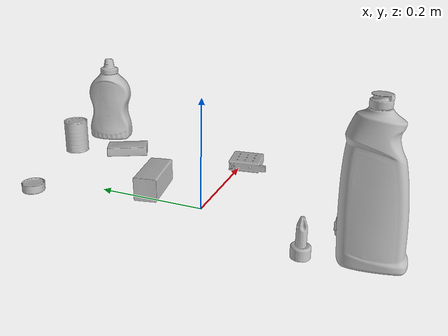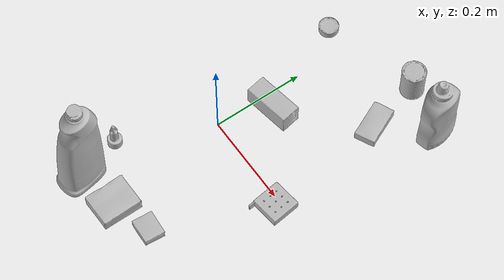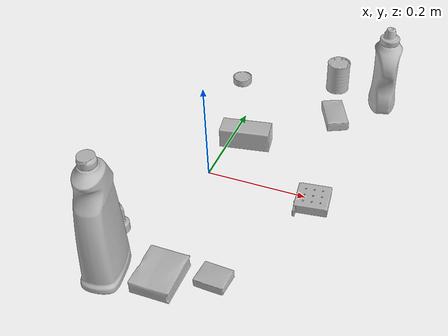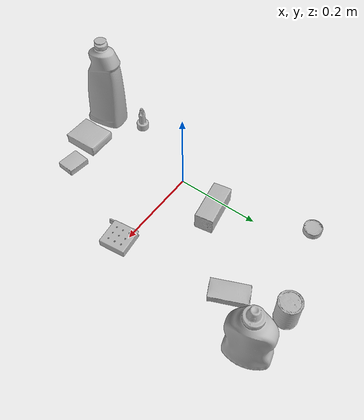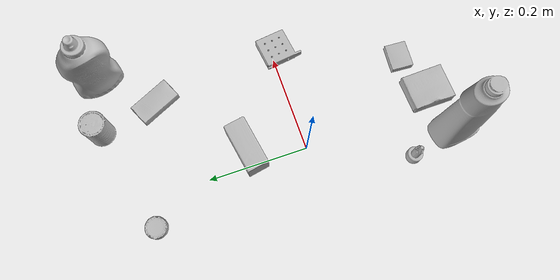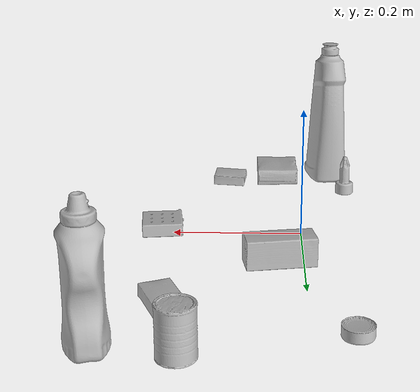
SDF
<sdf version="1.4">
  <world name="default">
    <light name="light1" type="point">
      <pose>0 0 1 0 0 0</pose>
      <diffuse>3 3 3 1</diffuse>
      <specular>3 3 3 1</specular>
    </light>
    <light name="light2" type="point">
      <pose>0 0.5 2 0 0 0</pose>
      <diffuse>1 1 1 1</diffuse>
      <specular>1 1 1 1</specular>
    </light>
    <light name="light3" type="point">
      <pose>0 0.5 2 0 0 0</pose>
      <diffuse>3 3 3 1</diffuse>
      <specular>3 3 3 1</specular>
    </light>
    <scene>
      <ambient>0.7 0.7 0.7</ambient>
    </scene>
    <model name="bottle1">
      <link name="link_bottle1">
        <collision name="default">
          <geometry>
            <mesh>
              <uri>model://mustard_bottle/collision_meshes/collision.obj</uri>
              <scale>1.0 1.0 1.0</scale>
            </mesh>
          </geometry>
          <surface>
            <friction>
              <ode>
                <mu>0.5</mu>
                <mu2>0.5</mu2>
              </ode>
            </friction>
          <contact>
        <ode>
            <max_vel>0</max_vel>
            <min_depth>0.0001</min_depth>
            <kp>1e8</kp>
        </ode>
    </contact></surface>
        </collision>
        <visual name="default">
          <geometry>
            <mesh>
              <uri>model://mustard_bottle/visual_meshes/visual.dae</uri>
              <scale>1.0 1.0 1.0</scale>
            </mesh>
          </geometry>
        </visual>
        <inertial>
          <mass>0.9814921021461487</mass>
          <pose>0.000503245391882956 -0.00015647400869056582 -0.0174757968634367 0.00041823298570721707 0.000946579165099878 0.024853733541460008</pose>
          <inertia>
            <ixx>0.0027254699</ixx>
            <iyy>0.0023913688</iyy>
            <izz>0.0007182988</izz>
            <ixy>0</ixy>
            <ixz>0</ixz>
            <iyz>0</iyz>
          </inertia>
        </inertial>
      </link>
      <pose>0.2697654664516449 0.3496907651424408 0.09583085030317307 -0.012050802483421837 -0.004890107172579969 -2.9144863270286137</pose>
    </model>
    <model name="bottle2">
      <link name="link_bottle2">
        <collision name="default">
          <geometry>
            <mesh>
              <uri>model://bleach_cleanser/collision_meshes/collision.obj</uri>
              <scale>1.0 1.0 1.0</scale>
            </mesh>
          </geometry>
          <surface>
            <friction>
              <ode>
                <mu>0.5</mu>
                <mu2>0.5</mu2>
              </ode>
            </friction>
          <contact>
        <ode>
            <max_vel>0</max_vel>
            <min_depth>0.0001</min_depth>
            <kp>1e8</kp>
        </ode>
    </contact></surface>
        </collision>
        <visual name="default">
          <geometry>
            <mesh>
              <uri>model://bleach_cleanser/visual_meshes/visual.dae</uri>
              <scale>1.0 1.0 1.0</scale>
            </mesh>
          </geometry>
        </visual>
        <inertial>
          <mass>0.5613878965377808</mass>
          <pose>0.00012193182919872925 0.0037838828284293413 -0.02442161738872528 -0.07381670616369514 0.00042011545192634117 -0.006875071107578698</pose>
          <inertia>
            <ixx>0.0027323565</ixx>
            <iyy>0.002546156</iyy>
            <izz>0.0004671619</izz>
            <ixy>0</ixy>
            <ixz>0</ixz>
            <iyz>0</iyz>
          </inertia>
        </inertial>
      </link>
      <pose>-0.057581864297389984 -0.28817394375801086 0.12578412890434265 -0.0001985808707051274 1.7573830249838703e-05 0.16369715182688976</pose>
    </model>
    <model name="toy1">
      <link name="link_toy1">
        <collision name="default">
          <geometry>
            <mesh>
              <uri>model://nine_hole_peg_test/collision_meshes/collision.obj</uri>
              <scale>0.5 0.5 0.5</scale>
            </mesh>
          </geometry>
          <surface>
            <friction>
              <ode>
                <mu>0.5</mu>
                <mu2>0.5</mu2>
              </ode>
            </friction>
          <contact>
        <ode>
            <max_vel>0</max_vel>
            <min_depth>0.0001</min_depth>
            <kp>1e8</kp>
        </ode>
    </contact></surface>
        </collision>
        <visual name="default">
          <geometry>
            <mesh>
              <uri>model://nine_hole_peg_test/visual_meshes/visual.dae</uri>
              <scale>0.5 0.5 0.5</scale>
            </mesh>
          </geometry>
        </visual>
        <inertial>
          <mass>0.10001979023218155</mass>
          <pose>-0.002308693015947938 -0.0048238071613013744 1.323034393863054e-05 -0.001466679064329537 0.000719417562538249 -0.6342417933325166</pose>
          <inertia>
            <ixx>3.9099352e-05</ixx>
            <iyy>3.650665e-05</iyy>
            <izz>6.851359e-05</izz>
            <ixy>0</ixy>
            <ixz>0</ixz>
            <iyz>0</iyz>
          </inertia>
        </inertial>
      </link>
      <pose>0.21666422486305237 -0.01662370190024376 0.010385502129793167 6.9349592430344675e-09 2.109580117434182e-09 -3.0099540251402455</pose>
    </model>
    <model name="toy2">
      <link name="link_toy2">
        <collision name="default">
          <geometry>
            <mesh>
              <uri>model://d_toy_airplane/collision_meshes/collision.obj</uri>
              <scale>1.0 1.0 1.0</scale>
            </mesh>
          </geometry>
          <surface>
            <friction>
              <ode>
                <mu>0.5</mu>
                <mu2>0.5</mu2>
              </ode>
            </friction>
          <contact>
        <ode>
            <max_vel>0</max_vel>
            <min_depth>0.0001</min_depth>
            <kp>1e8</kp>
        </ode>
    </contact></surface>
        </collision>
        <visual name="default">
          <geometry>
            <mesh>
              <uri>model://d_toy_airplane/visual_meshes/visual.dae</uri>
              <scale>1.0 1.0 1.0</scale>
            </mesh>
          </geometry>
        </visual>
        <inertial>
          <mass>0.019254321232438087</mass>
          <pose>9.410314669366926e-05 -5.809308640891686e-05 -0.011728096753358841 0.0002669110283705203 0.00467899073598619 0.5194519611142697</pose>
          <inertia>
            <ixx>5.7720713e-06</ixx>
            <iyy>5.776424e-06</iyy>
            <izz>1.7426261e-06</izz>
            <ixy>0</ixy>
            <ixz>0</ixz>
            <iyz>0</iyz>
          </inertia>
        </inertial>
      </link>
      <pose>-0.08459186553955078 -0.19371996819972992 0.0333387665450573 -3.3471759677572874e-05 -0.00016567764191101757 0.5774560962341684</pose>
    </model>
    <model name="can1">
      <link name="link_can1">
        <collision name="default">
          <geometry>
            <mesh>
              <uri>model://master_chef_can/collision_meshes/collision.obj</uri>
              <scale>0.5 0.5 0.5</scale>
            </mesh>
          </geometry>
          <surface>
            <friction>
              <ode>
                <mu>0.5</mu>
                <mu2>0.5</mu2>
              </ode>
            </friction>
          <contact>
        <ode>
            <max_vel>0</max_vel>
            <min_depth>0.0001</min_depth>
            <kp>1e8</kp>
        </ode>
    </contact></surface>
        </collision>
        <visual name="default">
          <geometry>
            <mesh>
              <uri>model://master_chef_can/visual_meshes/visual.dae</uri>
              <scale>0.5 0.5 0.5</scale>
            </mesh>
          </geometry>
        </visual>
        <inertial>
          <mass>0.11909646540880203</mass>
          <pose>-4.661963976104744e-05 1.3926845099376806e-07 -5.07990553160198e-05 -0.0017995128948922 0.0006479239957886283 -0.6102624789319168</pose>
          <inertia>
            <ixx>6.990155e-05</ixx>
            <iyy>6.938709e-05</iyy>
            <izz>3.8625953e-05</izz>
            <ixy>0</ixy>
            <ixz>0</ixz>
            <iyz>0</iyz>
          </inertia>
        </inertial>
      </link>
      <pose>0.15983308851718903 0.3738972246646881 0.03530200570821762 -1.1266342759955075e-06 -8.029173456960215e-07 1.8429776267580575</pose>
    </model>
    <model name="can2">
      <link name="link_can2">
        <collision name="default">
          <geometry>
            <mesh>
              <uri>model://tuna_fish_can/collision_meshes/collision.obj</uri>
              <scale>0.5 0.5 0.5</scale>
            </mesh>
          </geometry>
          <surface>
            <friction>
              <ode>
                <mu>0.5</mu>
                <mu2>0.5</mu2>
              </ode>
            </friction>
          <contact>
        <ode>
            <max_vel>0</max_vel>
            <min_depth>0.0001</min_depth>
            <kp>1e8</kp>
        </ode>
    </contact></surface>
        </collision>
        <visual name="default">
          <geometry>
            <mesh>
              <uri>model://tuna_fish_can/visual_meshes/visual.dae</uri>
              <scale>0.5 0.5 0.5</scale>
            </mesh>
          </geometry>
        </visual>
        <inertial>
          <mass>0.019333453848958015</mass>
          <pose>-2.0361452698125504e-05 -7.256490789586678e-06 -0.0005269024986773729 -0.0017944786606280685 0.0001716327651594619 0.24054823336333434</pose>
          <inertia>
            <ixx>2.6139116e-06</ixx>
            <iyy>2.6030175e-06</iyy>
            <izz>4.4727767e-06</izz>
            <ixy>0</ixy>
            <ixz>0</ixz>
            <iyz>0</iyz>
          </inertia>
        </inertial>
      </link>
      <pose>-0.05564001575112343 0.31993579864501953 0.00851999968290329 5.829802916895017e-09 -2.2219131187278447e-09 0.8636542042964162</pose>
    </model>
    <model name="box1">
      <link name="link_box1">
        <collision name="default">
          <geometry>
            <mesh>
              <uri>model://sugar_box/collision_meshes/collision.obj</uri>
              <scale>0.5 0.5 0.5</scale>
            </mesh>
          </geometry>
          <surface>
            <friction>
              <ode>
                <mu>0.5</mu>
                <mu2>0.5</mu2>
              </ode>
            </friction>
          <contact>
        <ode>
            <max_vel>0</max_vel>
            <min_depth>0.0001</min_depth>
            <kp>1e8</kp>
        </ode>
    </contact></surface>
        </collision>
        <visual name="default">
          <geometry>
            <mesh>
              <uri>model://sugar_box/visual_meshes/visual.dae</uri>
              <scale>0.5 0.5 0.5</scale>
            </mesh>
          </geometry>
        </visual>
        <inertial>
          <mass>0.11277332901954651</mass>
          <pose>0.0005171863595023751 1.924554817378521e-05 -0.0001818240125430748 -0.00040462603870476286 0.0010506635217257978 0.002615378323397263</pose>
          <inertia>
            <ixx>2.34906e-05</ixx>
            <iyy>7.592646e-05</iyy>
            <izz>9.089305e-05</izz>
            <ixy>0</ixy>
            <ixz>0</ixz>
            <iyz>0</iyz>
          </inertia>
        </inertial>
      </link>
      <pose>0.18612727522850037 0.2567494511604309 0.011399304494261742 0.0007755443651874174 -0.023432609629841093 -1.142430993382568</pose>
    </model>
    <model name="box2">
      <link name="link_box2">
        <collision name="default">
          <geometry>
            <mesh>
              <uri>model://gelatin_box/collision_meshes/collision.obj</uri>
              <scale>1.0 1.0 1.0</scale>
            </mesh>
          </geometry>
          <surface>
            <friction>
              <ode>
                <mu>0.5</mu>
                <mu2>0.5</mu2>
              </ode>
            </friction>
          <contact>
        <ode>
            <max_vel>0</max_vel>
            <min_depth>0.0001</min_depth>
            <kp>1e8</kp>
        </ode>
    </contact></surface>
        </collision>
        <visual name="default">
          <geometry>
            <mesh>
              <uri>model://gelatin_box/visual_meshes/visual.dae</uri>
              <scale>1.0 1.0 1.0</scale>
            </mesh>
          </geometry>
        </visual>
        <inertial>
          <mass>0.18825438618659973</mass>
          <pose>0.0004319618456065655 0.00011156871914863586 -0.0003640321083366871 -0.0010503720853528096 -0.004755817758068365 0.016440559471334753</pose>
          <inertia>
            <ixx>0.00013289225</ixx>
            <iyy>9.492423e-05</iyy>
            <izz>0.0002022916</izz>
            <ixy>0</ixy>
            <ixz>0</ixz>
            <iyz>0</iyz>
          </inertia>
        </inertial>
      </link>
      <pose>0.033722054213285446 -0.27160272002220154 0.015168314799666405 0.0055963300361337115 -0.007303334024215244 -3.1337734509427717</pose>
    </model>
    <model name="box3">
      <link name="link_box3">
        <collision name="default">
          <geometry>
            <mesh>
              <uri>model://wood_block/collision_meshes/collision.obj</uri>
              <scale>0.5 0.5 0.5</scale>
            </mesh>
          </geometry>
          <surface>
            <friction>
              <ode>
                <mu>0.5</mu>
                <mu2>0.5</mu2>
              </ode>
            </friction>
          <contact>
        <ode>
            <max_vel>0</max_vel>
            <min_depth>0.0001</min_depth>
            <kp>1e8</kp>
        </ode>
    </contact></surface>
        </collision>
        <visual name="default">
          <geometry>
            <mesh>
              <uri>model://wood_block/visual_meshes/visual.dae</uri>
              <scale>0.5 0.5 0.5</scale>
            </mesh>
          </geometry>
        </visual>
        <inertial>
          <mass>0.16905224323272705</mass>
          <pose>-2.906657982748584e-06 -0.00028540476341731846 0.00013204291462898254 -0.05220975529285028 -0.0051926941753174345 -0.0068613788950967446</pose>
          <inertia>
            <ixx>5.655437e-05</ixx>
            <iyy>0.00017865526</iyy>
            <izz>0.00017798702</izz>
            <ixy>0</ixy>
            <ixz>0</ixz>
            <iyz>0</iyz>
          </inertia>
        </inertial>
      </link>
      <pose>0.035652030259370804 0.1121055856347084 0.02262927033007145 -0.005208554624476339 0.005718686001492867 0.17400764144085595</pose>
    </model>
    <model name="box4">
      <link name="link_box4">
        <collision name="default">
          <geometry>
            <mesh>
              <uri>model://pudding_box/collision_meshes/collision.obj</uri>
              <scale>0.5 0.5 0.5</scale>
            </mesh>
          </geometry>
          <surface>
            <friction>
              <ode>
                <mu>0.5</mu>
                <mu2>0.5</mu2>
              </ode>
            </friction>
          <contact>
        <ode>
            <max_vel>0</max_vel>
            <min_depth>0.0001</min_depth>
            <kp>1e8</kp>
        </ode>
    </contact></surface>
        </collision>
        <visual name="default">
          <geometry>
            <mesh>
              <uri>model://pudding_box/visual_meshes/visual.dae</uri>
              <scale>0.5 0.5 0.5</scale>
            </mesh>
          </geometry>
        </visual>
        <inertial>
          <mass>0.04372405260801315</mass>
          <pose>0.00024474109522998333 0.00040339428232982755 -0.00025944135268218815 0.005213099923843092 -0.006603798704775496 0.02007982702870814</pose>
          <inertia>
            <ixx>1.2356946e-05</ixx>
            <iyy>8.313842e-06</iyy>
            <izz>1.8248264e-05</izz>
            <ixy>0</ixy>
            <ixz>0</ixz>
            <iyz>0</iyz>
          </inertia>
        </inertial>
      </link>
      <pose>0.1193067654967308 -0.24589282274246216 0.009862902574241161 0.02235018450604281 -0.011390519153278432 -1.6419572357218264</pose>
    </model>
  <physics type="ode">
      <max_contacts>50</max_contacts>
      <ode>
        <solver>
          <type>quick</type>
          <iters>75</iters>
        </solver>
        <constraints>
          <contact_max_correcting_vel>0</contact_max_correcting_vel>
          <contact_surface_layer>0</contact_surface_layer>
        </constraints>
      </ode>
    </physics></world>
</sdf>
